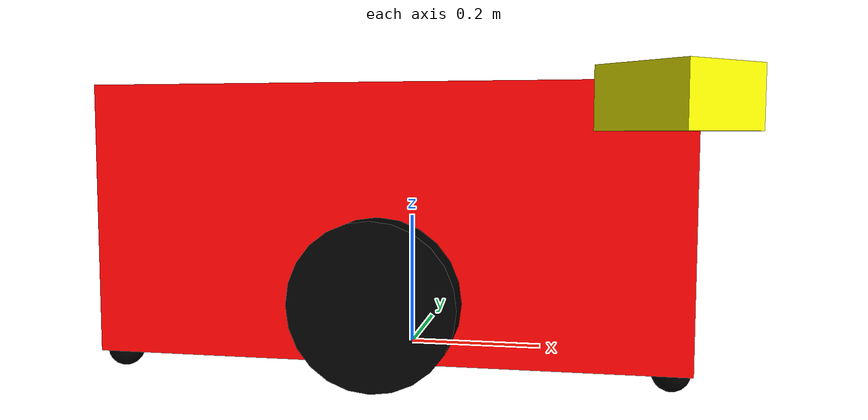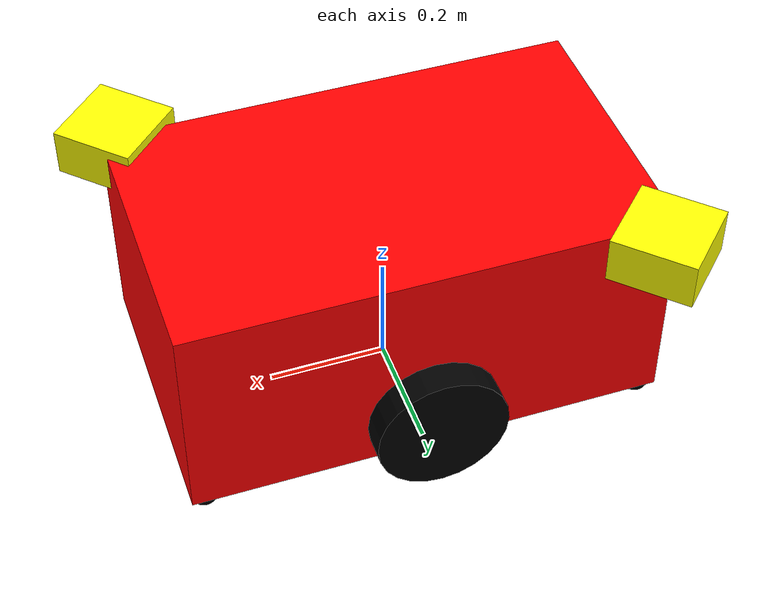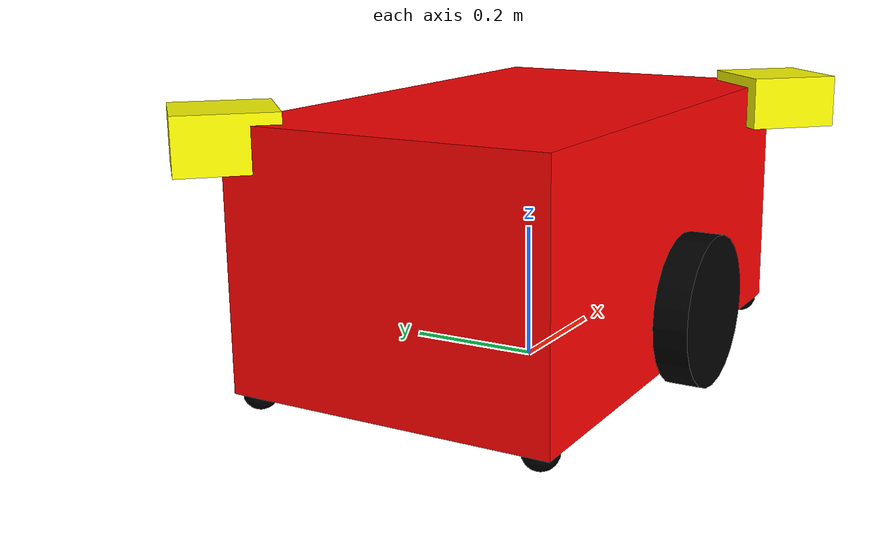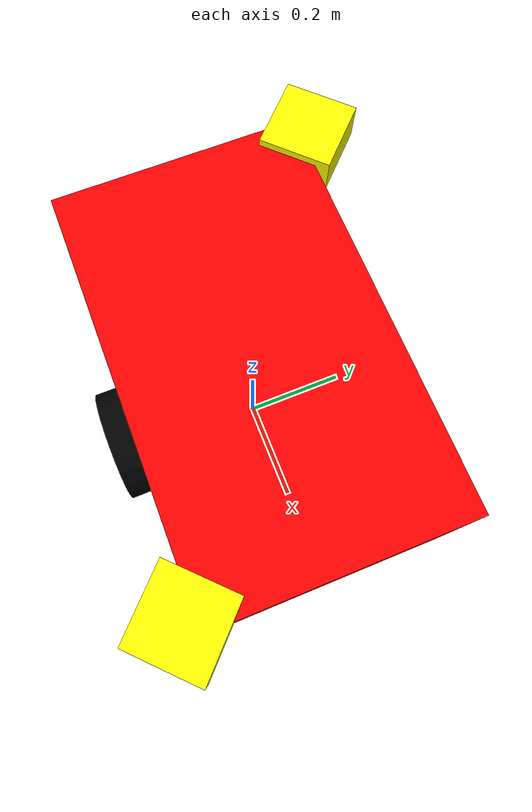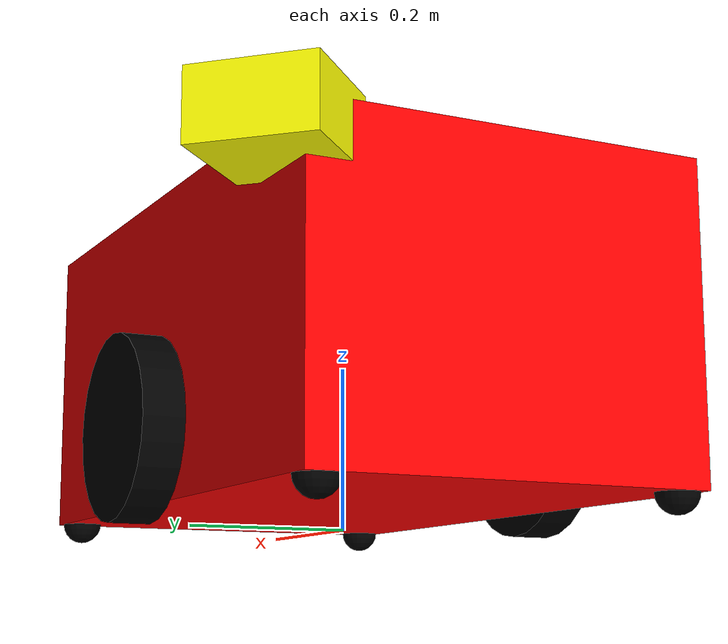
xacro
<?xml version="1.0" encoding="utf-8"?>
<robot name="TY2_SW" xmlns:xacro="http://ros.org/wiki/xacro">

	<xacro:include filename="$(find delta_amr2st_gazebo)/urdf/AMR_tag/common_properties.xacro"/>
	<xacro:include filename="$(find delta_amr2st_gazebo)/urdf/AMR_tag/TY2_SW.gazebo.xacro"/>
	<xacro:include filename="$(find delta_amr2st_gazebo)/urdf/AMR_tag/TY2_SW_diff_drive_plugins.xacro"/>

	<link name="base_footprint"/>

	<!--link name="base_link"/-->

	<link name="base_link">
		<visual>
			<geometry>
				<box size="0.8 0.48 0.37" />
			</geometry>
			<origin xyz="0 0 0.1" rpy="0 0 0" />
			<material name="red" />
		</visual>
		<collision>
			<origin xyz="0 0 0.1" rpy="0 0 0" />
			<geometry>
				<box size="0.8 0.48 0.37" />
			</geometry>
		</collision>
		<inertial>
			<origin xyz="0 0 0" rpy="0 0 0"/>
			<mass value="5.0"/>
			<inertia ixx="0.153" ixy="0.0" ixz="0.0"
					 iyy="0.3237" iyz="0.0"
					 izz="0.3626" />
		</inertial>
	</link>

	<link name="Lwheel_link">
		<visual>
			<geometry>
				<cylinder length="0.05" radius="0.11" />
			</geometry>
			<material name="black" />
		</visual>
		<collision>
			<origin xyz="0 0 0" rpy="0 0 0"/>
			<geometry>
				<cylinder length="0.05" radius="0.11" />
			</geometry>
		</collision>
		<inertial>
			<origin xyz="0 0 0" />
			<mass value="2.8498940e-02" />
			<inertia ixx="1.1175580e-05" ixy="-4.2369783e-11" ixz="-5.9381719e-09"
					 iyy="1.1192413e-05" iyz="-1.4400107e-11"
					 izz="2.0712558e-05" />
		</inertial>
	</link>
	<link name="Rwheel_link">
		<visual>
			<geometry>
				<cylinder length="0.05" radius="0.11" />
			</geometry>
			<material name="black" />
		</visual>
		<collision>
			<origin xyz="0 0 0" rpy="0 0 0"/>
			<geometry>
				<cylinder length="0.05" radius="0.11" />
			</geometry>
		</collision>
		<inertial>
			<origin xyz="0 0 0" />
			<mass value="2.8498940e-02" />
			<inertia ixx="1.1175580e-05" ixy="-4.2369783e-11" ixz="-5.9381719e-09"
					 iyy="1.1192413e-05" iyz="-1.4400107e-11"
					 izz="2.0712558e-05" />
		</inertial>
	</link>
	<link name="scanF_link">
		<visual>
			<geometry>
				<box size="0.14 0.14 0.08" />
			</geometry>
			<origin xyz="0 0 0.03" rpy="0 0 0" />
			<material name="yallow" />
		</visual>
		<collision>
			<origin xyz="0 0 0.03" rpy="0 0 0" />
			<geometry>
				<box size="0.14 0.14 0.08" />
			</geometry>
		</collision>
		<inertial>
			<mass value="0.114" />
			<origin xyz="0 0 0" />
			<inertia ixx="0.001" ixy="0.0" ixz="0.0"
					 iyy="0.001" iyz="0.0"
					 izz="0.001" />
		</inertial>
	</link>
	<link name="scanB_link">
		<visual>
			<geometry>
				<box size="0.14 0.14 0.08" />
			</geometry>
			<origin xyz="0 0 0.03" rpy="0 0 0" />
			<material name="yallow" />
		</visual>
		<collision>
			<origin xyz="0 0 0.03" rpy="0 0 0" />
			<geometry>
				<box size="0.14 0.14 0.08" />
			</geometry>
		</collision>
		<inertial>
			<mass value="0.114" />
			<origin xyz="0 0 0" />
			<inertia ixx="0.001" ixy="0.0" ixz="0.0"
					 iyy="0.001" iyz="0.0"
					 izz="0.001" />
		</inertial>
	</link>
	<link name="imu_ch110_link">
		<visual>
			<geometry>
				<box size="0.04 0.04 0.025" />
			</geometry>
			<material name="black" />
		</visual>
		<collision>
			<origin xyz="0 0 0" rpy="0 0 0" />
			<geometry>
				<box size="0.04 0.04 0.025" />
			</geometry>
		</collision>
		<inertial>
			<mass value="0.114" />
			<origin xyz="0 0 0" />
			<inertia ixx="0.001" ixy="0.0" ixz="0.0"
					 iyy="0.001" iyz="0.0"
					 izz="0.001" />
		</inertial>
	</link>

	<link name="sub_wheel1_link">
		<visual>
			<geometry>
				<sphere radius="0.025" />
			</geometry>
			<material name="black" />
		</visual>
		<collision>
			<geometry>
				<sphere radius="0.025" />
			</geometry>
		</collision>
		<inertial>
			<mass value="0.01"/>
			<inertia ixx="0.001" ixy="0.0" ixz="0.0"
					 iyy="0.001" iyz="0.0"
					 izz="0.001" />
		</inertial>
	</link>
	<link name="sub_wheel2_link">
		<visual>
			<geometry>
				<sphere radius="0.025" />
			</geometry>
			<material name="black" />
		</visual>
		<collision>
			<geometry>
				<sphere radius="0.025" />
			</geometry>
		</collision>
		<inertial>
			<mass value="0.01"/>
			<inertia ixx="0.001" ixy="0.0" ixz="0.0"
					 iyy="0.001" iyz="0.0"
					 izz="0.001" />
		</inertial>
	</link>
	<link name="sub_wheel3_link">
		<visual>
			<geometry>
				<sphere radius="0.025" />
			</geometry>
			<material name="black" />
		</visual>
		<collision>
			<geometry>
				<sphere radius="0.025" />
			</geometry>
		</collision>
		<inertial>
			<mass value="0.01"/>
			<inertia ixx="0.001" ixy="0.0" ixz="0.0"
					 iyy="0.001" iyz="0.0"
					 izz="0.001" />
		</inertial>
	</link>
	<link name="sub_wheel4_link">
		<visual>
			<geometry>
				<sphere radius="0.025" />
			</geometry>
			<material name="black" />
		</visual>
		<collision>
			<geometry>
				<sphere radius="0.025" />
			</geometry>
		</collision>
		<inertial>
			<mass value="0.01"/>
			<inertia ixx="0.001" ixy="0.0" ixz="0.0"
					 iyy="0.001" iyz="0.0"
					 izz="0.001" />
		</inertial>
	</link>

	<joint name="basefootprint_to_base_joint" type="fixed">
		<origin xyz="0 0 0.11" rpy="0 0 0" />
		<parent link="base_footprint" />
		<child link="base_link" />
	</joint>
	<joint name="body_to_Lwheel_joint" type="continuous">
		<origin xyz="0 0.2738 0" rpy="-1.5707 0 0" />
		<parent link="base_link" />
		<child link="Lwheel_link" />
		<axis xyz="0 0 1" />
	</joint>
	<joint name="body_to_Rwheel_joint" type="continuous">
		<origin xyz="0 -0.2738 0" rpy="1.5707 0 0" />
		<parent link="base_link" />
		<child link="Rwheel_link" />
		<axis xyz="0 0 -1" />
	</joint>
	<joint name="body_to_scanF_joint" type="fixed">>
		<origin xyz="0.37142 -0.25887 0.23138" rpy="0 0 -0.7853981634" /><!--origin xyz="0.33142 -0.22887 0.23138"/-->
		<parent link="base_link" />
		<child link="scanF_link" />
	</joint>
	<joint name="body_to_scanB_joint" type="fixed">>
		<origin xyz="-0.37142 0.25887 0.23138" rpy="0 0 2.3561944902" />
		<parent link="base_link" />
		<child link="scanB_link" />
	</joint>
	<joint name="body_to_imu_joint" type="fixed">>
		<origin xyz="0 0 -0.0246" rpy="0 0 0" />
		<parent link="base_link" />
		<child link="imu_ch110_link" />
	</joint>

	<joint name="body_to_Swheel1_joint" type="fixed">>
		<origin xyz="0.375 0.215 -0.085" rpy="0 0 0" />
		<parent link="base_link" />
		<child link="sub_wheel1_link" />
	</joint>
	<joint name="body_to_Swheel2_joint" type="fixed">>
		<origin xyz="0.375 -0.215 -0.085" rpy="0 0 0" />
		<parent link="base_link" />
		<child link="sub_wheel2_link" />
	</joint>
	<joint name="body_to_Swheel3_joint" type="fixed">>
		<origin xyz="-0.375 -0.215 -0.085" rpy="0 0 0" />
		<parent link="base_link" />
		<child link="sub_wheel3_link" />
	</joint>
	<joint name="body_to_Swheel4_joint" type="fixed">>
		<origin xyz="-0.375 0.215 -0.085" rpy="0 0 0" />
		<parent link="base_link" />
		<child link="sub_wheel4_link" />
	</joint>

</robot>

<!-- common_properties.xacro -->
<robot name="xacro_properties" xmlns:xacro="http://ros.org/wiki/xacro">

  <!-- Init colour -->
  <material name="black">
      <color rgba="0.0 0.0 0.0 1.0"/>
  </material>

  <material name="blue">
    <color rgba="0.0 0.0 1.0 1.0"/>
  </material>

  <material name="green">
    <color rgba="0.0 1.0 0.0 1.0"/>
  </material>

  <material name="grey">
    <color rgba="0.5 0.5 0.5 1.0"/>
  </material>

  <material name="yallow">
		<color rgba="1.0 1.0 0.0 1.0"/>
	</material>

  <material name="orange">
    <color rgba="${255/255} ${108/255} ${10/255} 1.0"/>
  </material>

  <material name="brown">
    <color rgba="${222/255} ${207/255} ${195/255} 1.0"/>
  </material>

  <material name="red">
    <color rgba="1.0 0.0 0.0 1.0"/>
  </material>

  <material name="white">
    <color rgba="1.0 1.0 1.0 1.0"/>
  </material>
</robot>
